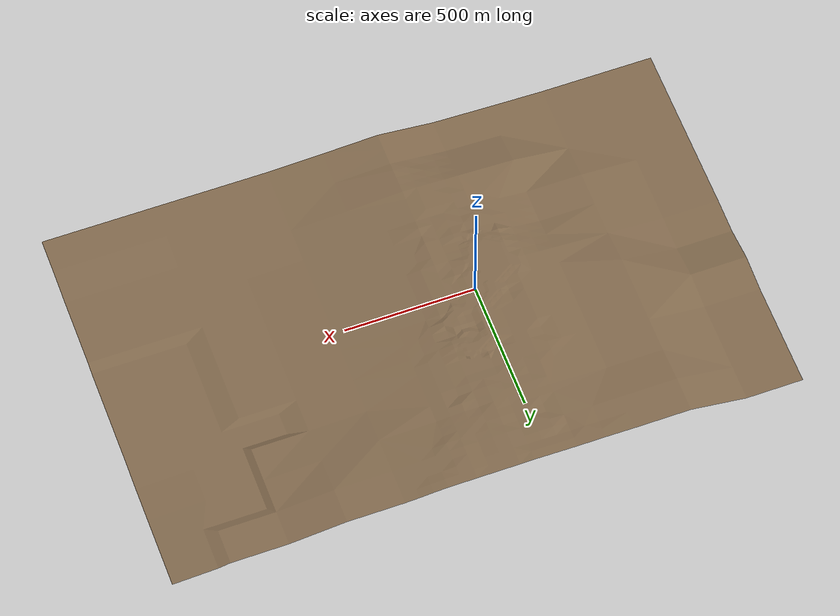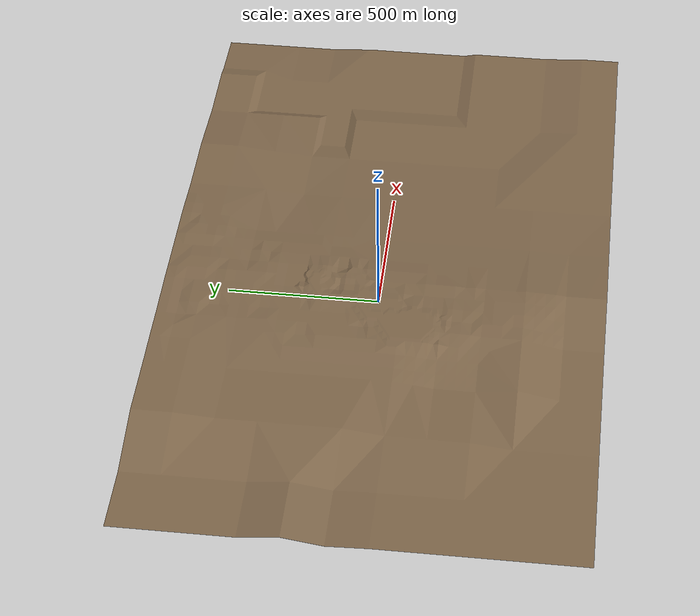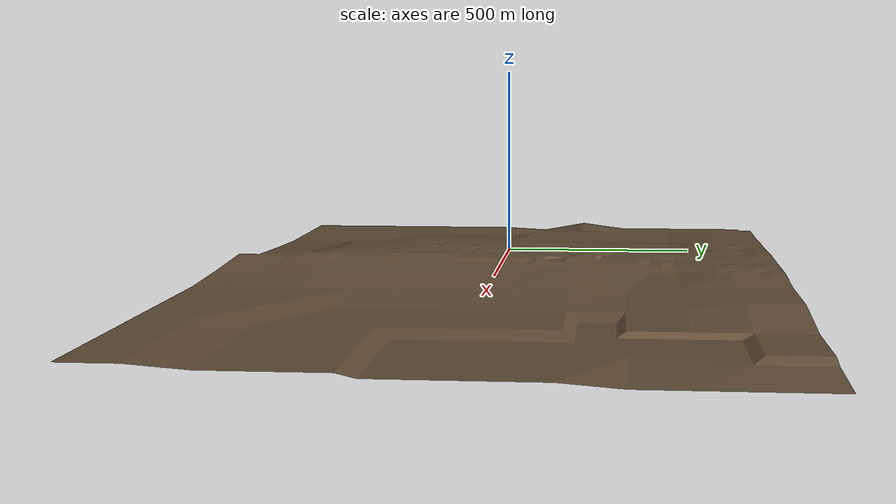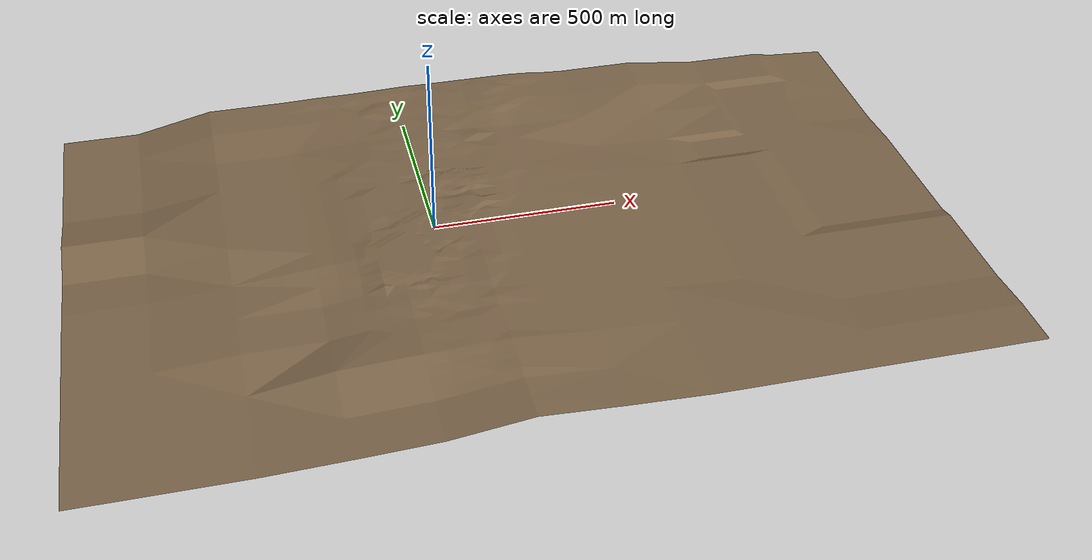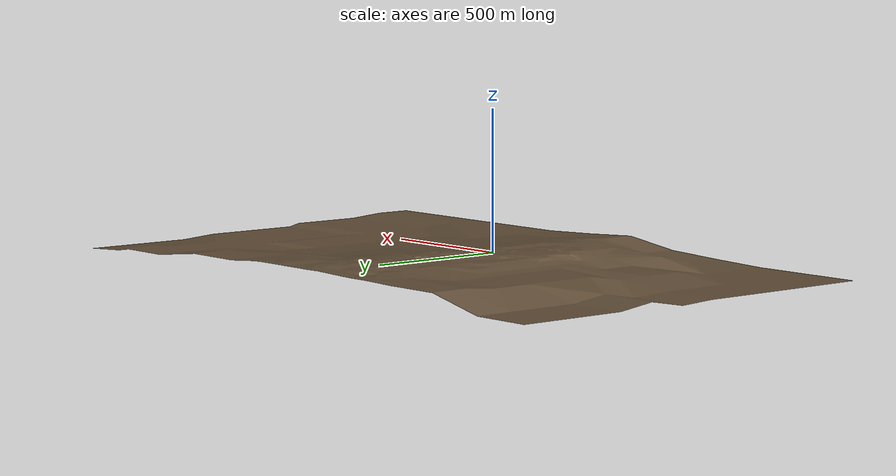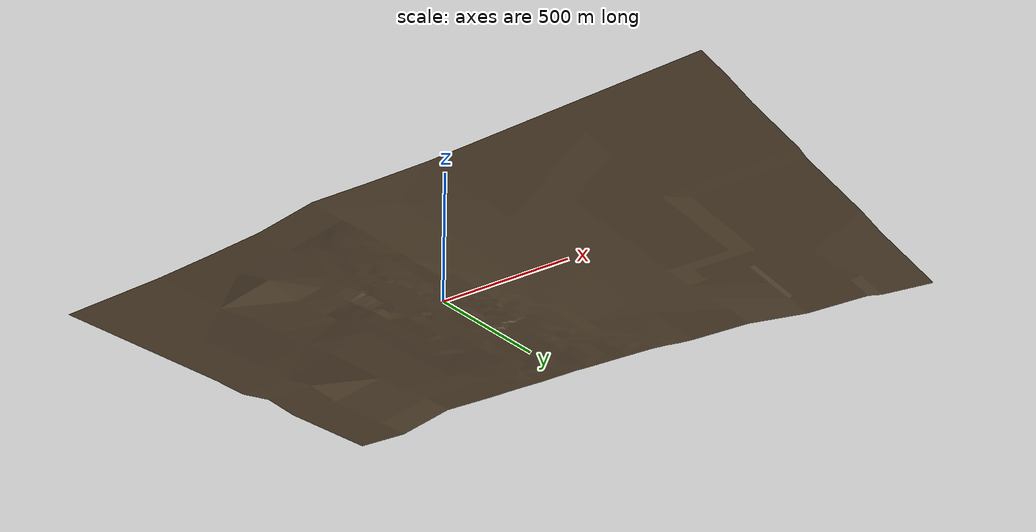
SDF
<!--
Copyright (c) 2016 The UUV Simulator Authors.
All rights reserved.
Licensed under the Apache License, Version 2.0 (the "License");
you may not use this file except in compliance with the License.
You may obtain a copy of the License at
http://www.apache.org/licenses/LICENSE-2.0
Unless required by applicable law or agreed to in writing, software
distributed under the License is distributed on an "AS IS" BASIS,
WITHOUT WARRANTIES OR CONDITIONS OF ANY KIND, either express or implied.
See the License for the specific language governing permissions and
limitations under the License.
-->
<?xml version="1.0" ?>
<sdf version="1.5">
  <model name="mulkholmen_terrain">
    <static>true</static>
    <link name="link">
      <collision name="seabed">
        <pose>0 0 0 0 0 0</pose>
        <geometry>
          <mesh>
            <uri>model://munkholmen_seabed/meshes/seabed.dae</uri>
            <scale>1.0 1.0 1.0</scale>
          </mesh>
        </geometry>
      </collision>

      <visual name="seabed">
        <cast_shadows>true</cast_shadows>
        <pose>0 0 0 0 0 0</pose>
        <geometry>
          <mesh>
            <scale>1.0 1.0 1.0</scale>
            <uri>model://munkholmen_seabed/meshes/seabed.dae</uri>
          </mesh>
        </geometry>
        <material>
          <script>
            <uri>model://sand_heightmap/scripts</uri>
            <name>UUVSimulator/SandAndStones</name>
          </script>
        </material>
      </visual>
    </link>

  </model>
</sdf>
